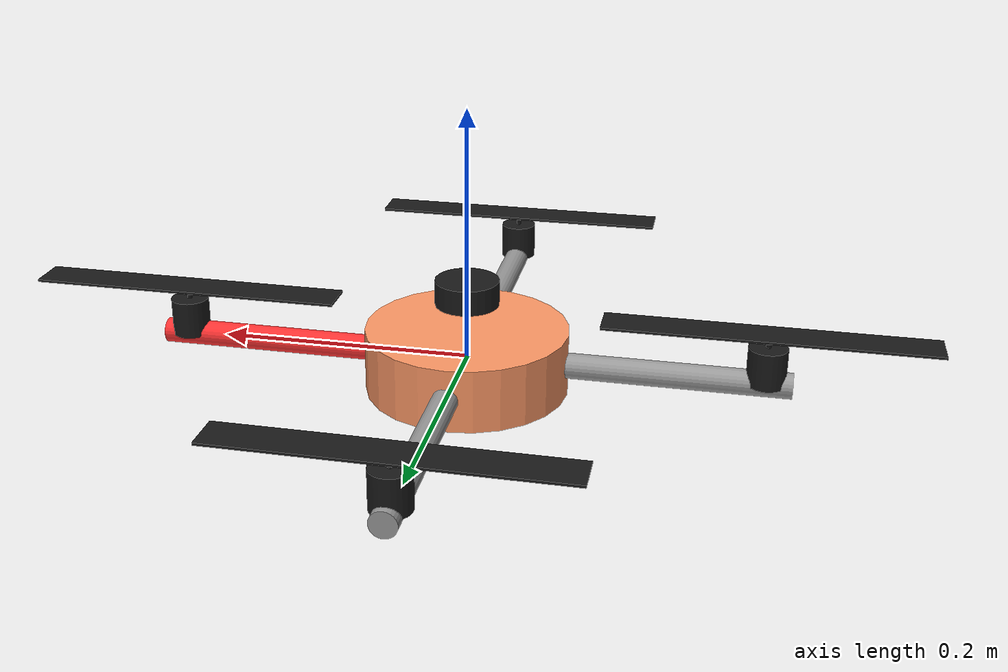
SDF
<?xml version="1.0" ?>
<sdf version="1.5">
  <model name="mrsim-quadrotor-lidar">
    <link name="base">
      <inertial>
        <mass>1.0</mass>
        <inertia>
          <ixx>0.015</ixx><ixy>0</ixy><ixz>0</ixz>
          <iyy>0.015</iyy><iyz>0</iyz>
          <izz>0.007</izz>
        </inertia>
      </inertial>

      <collision name="base">
        <geometry>
          <cylinder><radius>0.1</radius><length>0.05</length></cylinder>
        </geometry>
      </collision>
      <!-- three spheres to make contact stable -->
      <collision name="land_1">
        <pose>0.1 0 0 0 0 0</pose>
        <geometry>
          <sphere><radius>0.03</radius></sphere>
        </geometry>
      </collision>
      <collision name="land_2">
        <pose>-0.05 0.086 0 0 0 0</pose>
        <geometry>
          <sphere><radius>0.03</radius></sphere>
        </geometry>
      </collision>
      <collision name="land_3">
        <pose>-0.05 -0.086 0 0 0 0</pose>
        <geometry>
          <sphere><radius>0.03</radius></sphere>
        </geometry>
      </collision>

      <visual name="body">
        <geometry>
          <cylinder><radius>0.08</radius><length>0.05</length></cylinder>
        </geometry>
        <material>
          <ambient>1.0 0.6 0.4 1</ambient>
          <diffuse>1.0 0.6 0.4 1</diffuse>
        </material>
      </visual>

      <!-- Lidar görsel temsili (küçük silindir) -->
      <visual name="lidar_body">
        <pose>0 0 0.055 0 0 0</pose>
        <geometry>
          <cylinder><radius>0.025</radius><length>0.02</length></cylinder>
        </geometry>
        <material>
          <ambient>0.1 0.1 0.1 1</ambient>
          <diffuse>0.1 0.1 0.1 1</diffuse>
        </material>
      </visual>

      <visual name="arm-1">
        <pose>0.125 0 0 0 1.5708 0</pose>
        <geometry>
          <cylinder><radius>0.01</radius><length>0.25</length></cylinder>
        </geometry>
        <material>
          <ambient>1.0 0.2 0.2 1</ambient>
          <diffuse>1.0 0.2 0.2 1</diffuse>
        </material>
      </visual>
      <visual name="arm-2">
        <pose>0 0.125 0 0 1.5708 1.5708</pose>
        <geometry>
          <cylinder><radius>0.01</radius><length>0.25</length></cylinder>
        </geometry>
        <material>
          <ambient>0.6 0.6 0.6 1</ambient>
          <diffuse>0.6 0.6 0.6 1</diffuse>
        </material>
      </visual>
      <visual name="arm-3">
        <pose>-0.125 0 0 0 1.5708 0</pose>
        <geometry>
          <cylinder><radius>0.01</radius><length>0.25</length></cylinder>
        </geometry>
        <material>
          <ambient>0.6 0.6 0.6 1</ambient>
          <diffuse>0.6 0.6 0.6 1</diffuse>
        </material>
      </visual>
      <visual name="arm-4">
        <pose>0 -0.125 0 0 1.5708 1.5708</pose>
        <geometry>
          <cylinder><radius>0.01</radius><length>0.25</length></cylinder>
        </geometry>
        <material>
          <ambient>0.6 0.6 0.6 1</ambient>
          <diffuse>0.6 0.6 0.6 1</diffuse>
        </material>
      </visual>

      <sensor name="lidar_2d" type="gpu_lidar">
        <pose>0 0 0.06 0 0 0</pose>
        <topic>/lidar/scan</topic>
        <update_rate>10</update_rate>
        <lidar>
          <scan>
            <horizontal>
              <samples>360</samples>
              <resolution>1</resolution>
              <min_angle>-3.14159265358979</min_angle>
              <max_angle>3.14159265358979</max_angle>
            </horizontal>
            <!-- Yalnızca yatay (2D) tarama -->
            <vertical>
              <samples>1</samples>
              <resolution>1</resolution>
              <min_angle>0</min_angle>
              <max_angle>0</max_angle>
            </vertical>
          </scan>
          <range>
            <min>0.10</min>
            <max>8.0</max>
            <resolution>0.01</resolution>
          </range>
          <noise>
            <type>gaussian</type>
            <mean>0.0</mean>
            <stddev>0.005</stddev>
          </noise>
        </lidar>
        <always_on>true</always_on>
        <visualize>true</visualize>
      </sensor>

    </link>

    <include>
      <uri>model://mrsim-rotor</uri>
      <name>rotor-1</name>
      <pose>0.23 0 0 0 0 0</pose>
    </include>
    <joint name="motor-1" type="revolute">
      <parent>base</parent>
      <child>rotor-1::propeller</child>
      <axis><xyz>0 0 1</xyz></axis>
    </joint>

    <include>
      <uri>model://mrsim-rotor</uri>
      <name>rotor-2</name>
      <pose>0 0.23 0 0 0 0</pose>
    </include>
    <joint name="motor-2" type="revolute">
      <parent>base</parent>
      <child>rotor-2::propeller</child>
      <axis><xyz>0 0 1</xyz></axis>
    </joint>

    <include>
      <uri>model://mrsim-rotor</uri>
      <name>rotor-3</name>
      <pose>-0.23 0 0 0 0 0</pose>
    </include>
    <joint name="motor-3" type="revolute">
      <parent>base</parent>
      <child>rotor-3::propeller</child>
      <axis><xyz>0 0 1</xyz></axis>
    </joint>

    <include>
      <uri>model://mrsim-rotor</uri>
      <name>rotor-4</name>
      <pose>0 -0.23 0 0 0 0</pose>
    </include>
    <joint name="motor-4" type="revolute">
      <parent>base</parent>
      <child>rotor-4::propeller</child>
      <axis><xyz>0 0 1</xyz></axis>
    </joint>

    <plugin name="mrsim" filename="mrsim-gazebo.so">
      <link>base</link>

      <rotors>
        <noise>0.03</noise>
        <cf>6.5e-4</cf>
        <ct>1e-5</ct>
        <vfxy>0.5</vfxy><vfz>0.5</vfz>
        <vtxy>0.5</vtxy><vtz>0.5</vtz>
        <rotor><joint spin="cw">motor-1</joint></rotor>
        <rotor><joint spin="ccw">motor-2</joint></rotor>
        <rotor><joint spin="cw">motor-3</joint></rotor>
        <rotor><joint spin="ccw">motor-4</joint></rotor>
      </rotors>
    </plugin>

  </model>
</sdf>

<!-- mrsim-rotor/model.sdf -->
<sdf version="1.5">
  <model name="mrsim-rotor">
    <link name="propeller">
      <pose>0 0 0.04 0 0 0</pose> <!-- blade center where the wrench is applied -->
      <inertial>
        <mass>0.07</mass>
        <inertia>
          <ixx>4e-5</ixx><ixy>0</ixy><ixz>0</ixz>
          <iyy>4e-5</iyy><iyz>0</iyz>
          <izz>8e-5</izz>
        </inertia>
      </inertial>

      <collision name="collision">
        <geometry>
          <cylinder><radius>0.127</radius><length>0.002</length></cylinder>
        </geometry>
      </collision>

      <visual name="motor">
        <pose>0 0 -0.025 0 0 0</pose>
        <geometry>
          <cylinder><radius>0.015</radius><length>0.03</length></cylinder>
        </geometry>
        <material>
          <ambient>0.1 0.1 0.1 1</ambient>
          <diffuse>0.1 0.1 0.1 1</diffuse>
        </material>
      </visual>

      <visual name="axle">
        <pose>0 0 -0.005 0 0 0</pose>
        <geometry>
          <cylinder><radius>0.002</radius><length>0.01</length></cylinder>
        </geometry>
        <material>
          <ambient>0.1 0.1 0.1 1</ambient>
          <diffuse>0.1 0.1 0.1 1</diffuse>
        </material>
      </visual>

      <visual name="blade">
        <geometry>
          <box><size>0.25 0.03 0.002</size></box>
        </geometry>
        <material>
          <ambient>0.1 0.1 0.1 1</ambient>
          <diffuse>0.1 0.1 0.1 1</diffuse>
        </material>
      </visual>
    </link>
  </model>
</sdf>
